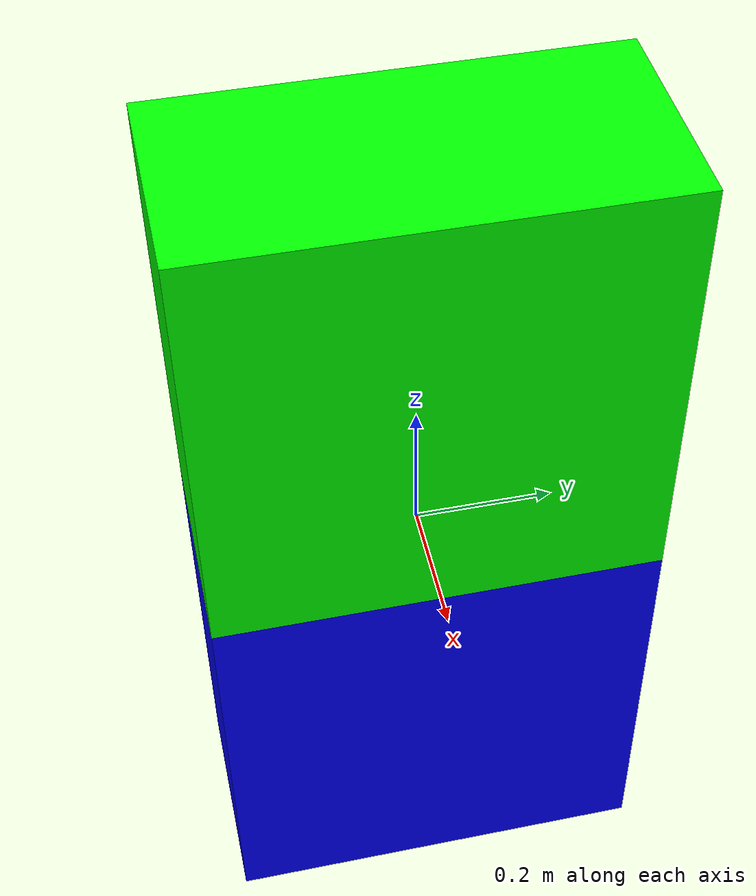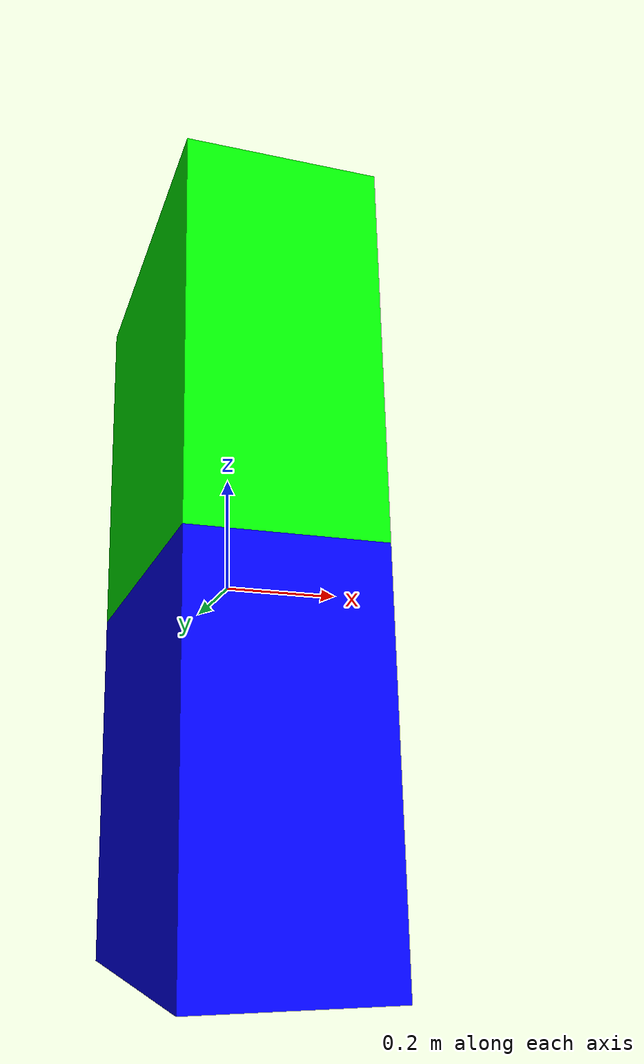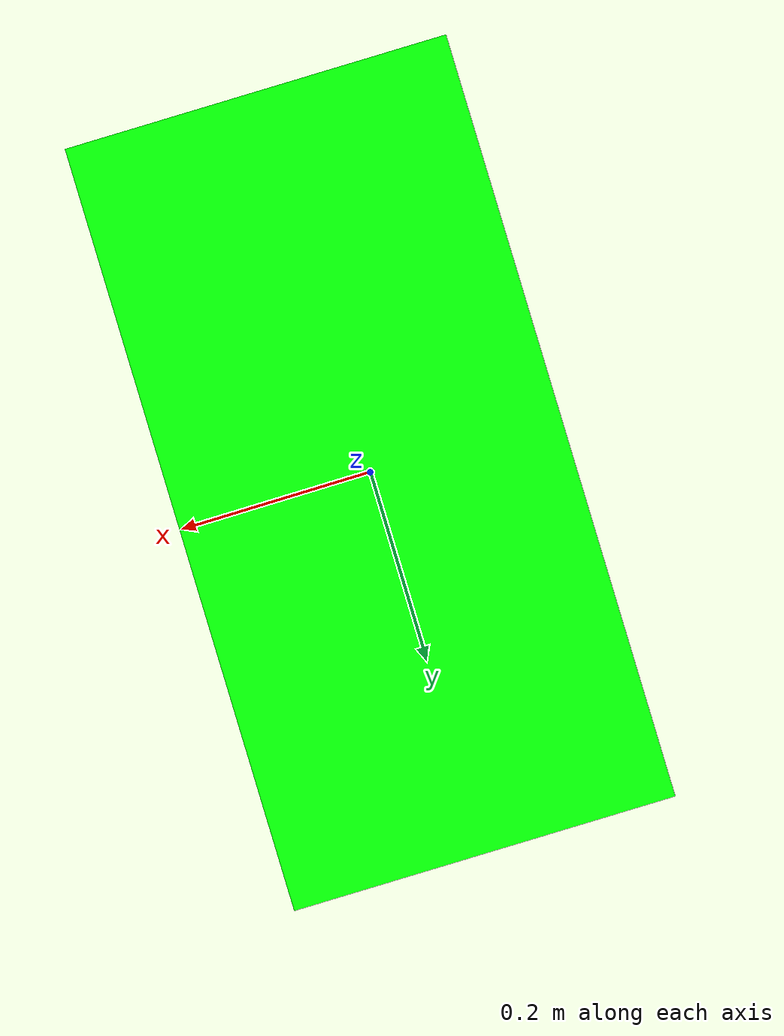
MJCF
<mujoco model="target">
  <custom>
    <numeric name="aabb_scale" size="1" data=".64"/>
  </custom>

  <worldbody>
    <site name="ft_sensor"/>
    <body name="object">
      <geom name="top" type="box" density="500" size=".16 .32 .32" pos=".0 .0 .32" rgba="0 1 0 1"/>
      <geom name="bottom" type="box" density="2000" size=".16 .32 .32" pos=".0 .0 -.32" rgba="0 0 1 1"/>
    </body>
  </worldbody>

  <sensor>
    <accelerometer name="linacc_sen" site="ft_sensor"/>
    <force name="force" site="ft_sensor"/>
    <torque name="torque" site="ft_sensor"/>
  </sensor>
</mujoco>
